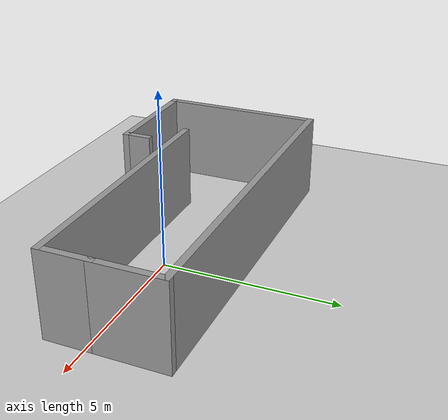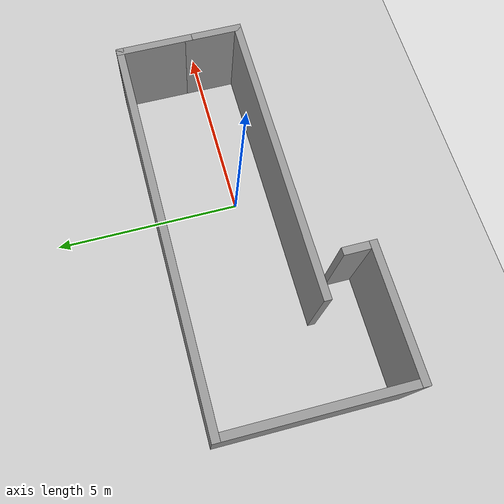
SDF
<sdf version="1.4">
 <world name="default">
  <light name="sun" type="directional">
   <pose>0 0 10 0 -0 0</pose>
   <diffuse>0.8 0.8 0.8 1</diffuse>
   <specular>0.2 0.2 0.2 1</specular>
   <attenuation>
    <range>1000</range>
    <constant>0.9</constant>
    <linear>0.01</linear>
    <quadratic>0.001</quadratic>
   </attenuation>
   <direction>-0.5 0.1 -0.9</direction>
  </light>
  <model name="ground_plane">
   <static>1</static>
   <link name="link">
    <collision name="collision">
     <geometry><plane><normal>0 0 1</normal><size>100 100</size></plane></geometry>
     <surface><friction><ode><mu>100</mu><mu2>50</mu2></ode></friction></surface>
    </collision>
    <visual name="visual">
     <cast_shadows>0</cast_shadows>
     <geometry><plane><normal>0 0 1</normal><size>100 100</size></plane></geometry>
     <material>
      <script><uri>file://media/materials/scripts/gazebo.material</uri><name>Gazebo/Grey</name></script>
     </material>
    </visual>
    <velocity_decay><linear>0</linear><angular>0</angular></velocity_decay>
   </link>
  </model>
  <physics type="ode">
   <max_step_size>0.001</max_step_size>
   <real_time_factor>1</real_time_factor>
   <real_time_update_rate>1000</real_time_update_rate>
   <gravity>0 0 -9.8</gravity>
  </physics>
  <scene><ambient>0.4 0.4 0.4 1</ambient><background>0.7 0.7 0.7 1</background><shadows>1</shadows></scene>
  <spherical_coordinates>
   <surface_model>EARTH_WGS84</surface_model>
   <latitude_deg>0</latitude_deg>
   <longitude_deg>0</longitude_deg>
   <elevation>0</elevation>
   <heading_deg>0</heading_deg>
  </spherical_coordinates>
  <model name="final_room">
   <link name="Wall_0">
    <collision name="Wall_0_Collision">
     <geometry><box><size>7.86008 0.2 2.5</size></box></geometry>
     <pose>0 0 1.25 0 -0 0</pose>
    </collision>
    <visual name="Wall_0_Visual">
     <pose>0 0 1.25 0 -0 0</pose>
     <geometry><box><size>7.86008 0.2 2.5</size></box></geometry>
     <material>
      <script><uri>file://media/materials/scripts/gazebo.material</uri><name>Gazebo/Grey</name></script>
     </material>
    </visual>
    <velocity_decay><linear>0</linear><angular>0</angular></velocity_decay>
    <pose>0.210039 -1.04 0 0 -0 0</pose>
   </link>
   <link name="Wall_1">
    <collision name="Wall_1_Collision">
     <geometry><box><size>1.56353 0.2 2.5</size></box></geometry>
     <pose>0 0 1.25 0 -0 0</pose>
    </collision>
    <visual name="Wall_1_Visual">
     <pose>0 0 1.25 0 -0 0</pose>
     <geometry><box><size>1.56353 0.2 2.5</size></box></geometry>
     <material>
      <script><uri>file://media/materials/scripts/gazebo.material</uri><name>Gazebo/Grey</name></script>
     </material>
    </visual>
    <velocity_decay><linear>0</linear><angular>0</angular></velocity_decay>
    <pose>4.04008 -0.358235 0 0 -0 1.5708</pose>
   </link>
   <link name="Wall_2">
    <collision name="Wall_2_Collision">
     <geometry><box><size>2.05395 0.2 2.5</size></box></geometry>
     <pose>0 0 1.25 0 -0 0</pose>
    </collision>
    <visual name="Wall_2_Visual">
     <pose>0 0 1.25 0 -0 0</pose>
     <geometry><box><size>2.05395 0.2 2.5</size></box></geometry>
     <material>
      <script><uri>file://media/materials/scripts/gazebo.material</uri><name>Gazebo/Grey</name></script>
     </material>
    </visual>
    <velocity_decay><linear>0</linear><angular>0</angular></velocity_decay>
    <pose>4.04008 1.2505 0 0 -0 1.5708</pose>
   </link>
   <link name="Wall_3">
    <collision name="Wall_3_Collision">
     <geometry><box><size>10.1872 0.2 2.5</size></box></geometry>
     <pose>0 0 1.25 0 -0 0</pose>
    </collision>
    <visual name="Wall_3_Visual">
     <pose>0 0 1.25 0 -0 0</pose>
     <geometry><box><size>10.1872 0.2 2.5</size></box></geometry>
     <material>
      <script><uri>file://media/materials/scripts/gazebo.material</uri><name>Gazebo/Grey</name></script>
     </material>
    </visual>
    <velocity_decay><linear>0</linear><angular>0</angular></velocity_decay>
    <pose>-0.95354 2.17748 0 0 -0 3.14159</pose>
   </link>
   <link name="Wall_4">
    <collision name="Wall_4_Collision">
     <geometry><box><size>4.88734 0.2 2.5</size></box></geometry>
     <pose>0 0 1.25 0 -0 0</pose>
    </collision>
    <visual name="Wall_4_Visual">
     <pose>0 0 1.25 0 -0 0</pose>
     <geometry><box><size>4.88734 0.2 2.5</size></box></geometry>
     <material>
      <script><uri>file://media/materials/scripts/gazebo.material</uri><name>Gazebo/Grey</name></script>
     </material>
    </visual>
    <velocity_decay><linear>0</linear><angular>0</angular></velocity_decay>
    <pose>-5.94716 -0.166192 0 0 0 -1.5708</pose>
   </link>
   <link name="Wall_5">
    <collision name="Wall_5_Collision">
     <geometry><box><size>3.45315 0.2 2.5</size></box></geometry>
     <pose>0 0 1.25 0 -0 0</pose>
    </collision>
    <visual name="Wall_5_Visual">
     <pose>0 0 1.25 0 -0 0</pose>
     <geometry><box><size>3.45315 0.2 2.5</size></box></geometry>
     <material>
      <script><uri>file://media/materials/scripts/gazebo.material</uri><name>Gazebo/Grey</name></script>
     </material>
    </visual>
    <velocity_decay><linear>0</linear><angular>0</angular></velocity_decay>
    <pose>-4.32058 -2.50986 0 0 -0 0</pose>
   </link>
   <link name="Wall_6">
    <collision name="Wall_6_Collision">
     <geometry><box><size>0.882112 0.2 2.5</size></box></geometry>
     <pose>0 0 1.25 0 -0 0</pose>
    </collision>
    <visual name="Wall_6_Visual">
     <pose>0 0 1.25 0 -0 0</pose>
     <geometry><box><size>0.882112 0.2 2.5</size></box></geometry>
     <material>
      <script><uri>file://media/materials/scripts/gazebo.material</uri><name>Gazebo/Grey</name></script>
     </material>
    </visual>
    <velocity_decay><linear>0</linear><angular>0</angular></velocity_decay>
    <pose>-2.69401 -2.1688 0 0 -0 1.5708</pose>
   </link>
   <static>1</static>
  </model>
 </world>
</sdf>
